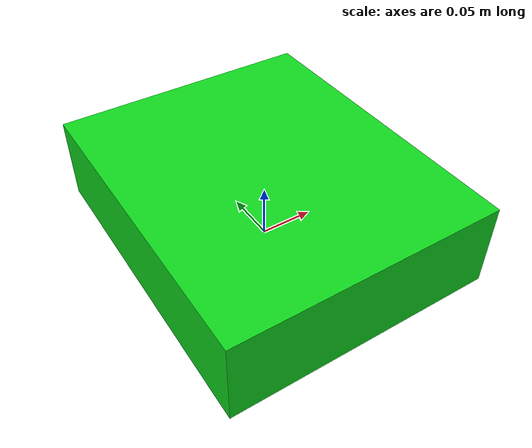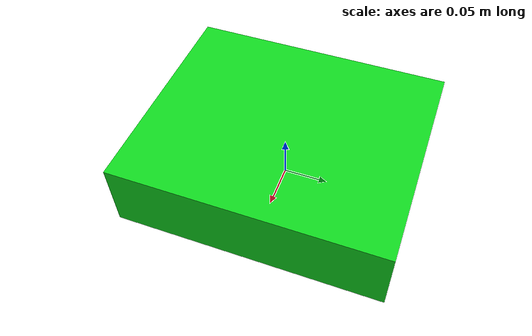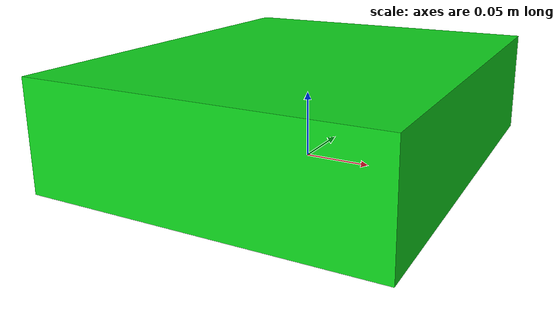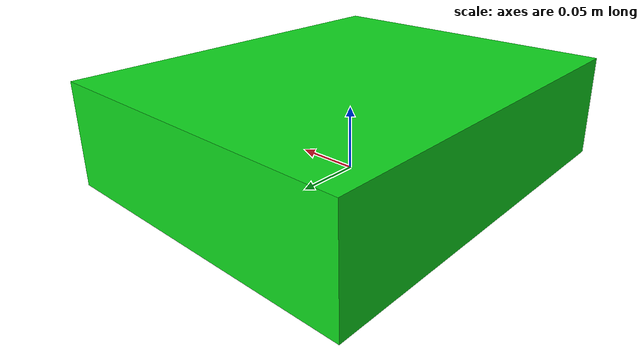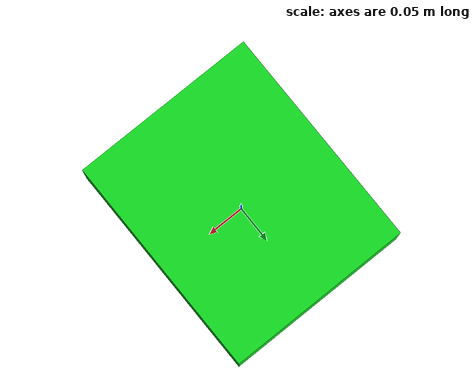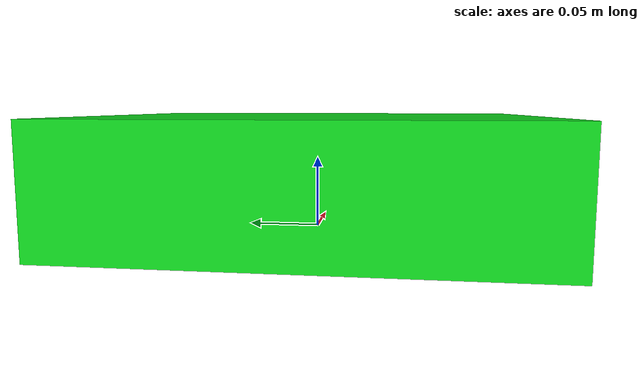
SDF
<?xml version="1.0" ?>
<sdf version="1.9">
  <model name="delivery_dock">
    <static>true</static>
    <link name="link">
      <collision name="collision">
        <pose>0 0 0.04 0 0 0</pose>
        <geometry><box><size>0.25 0.30 0.08</size></box></geometry>
        <surface>
          <friction><ode><mu>0.9</mu><mu2>0.9</mu2></ode></friction>
          <contact><ode><kp>1e6</kp><kd>1.0</kd></ode></contact>
        </surface>
      </collision>
      <visual name="visual">
        <pose>0 0 0.04 0 0 0</pose>
        <geometry><box><size>0.25 0.30 0.08</size></box></geometry>
        <material>
          <ambient>0.05 0.75 0.10 1</ambient>
          <diffuse>0.06 0.85 0.12 1</diffuse>
          <specular>0.15 0.15 0.15 1</specular>
        </material>
      </visual>
    </link>
  </model>
</sdf>
